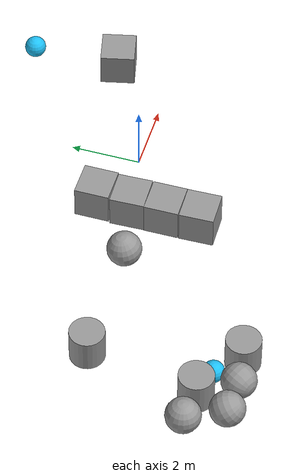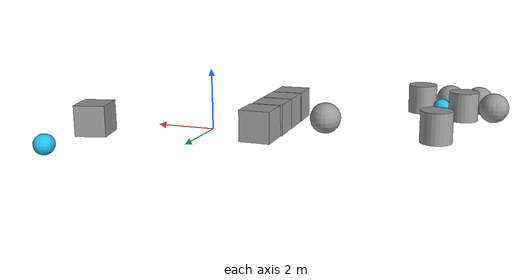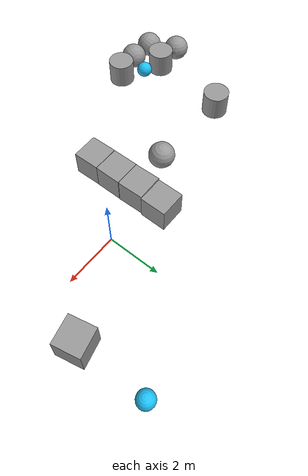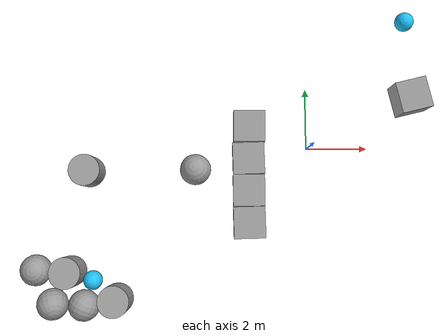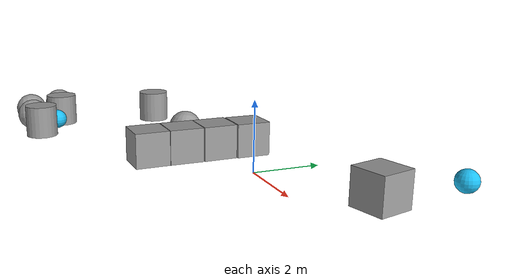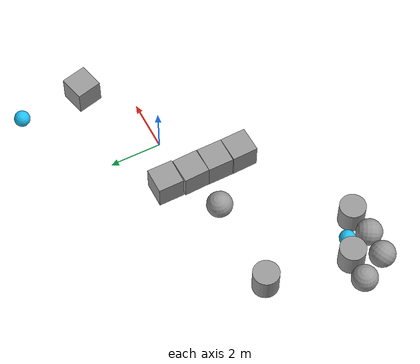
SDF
<sdf version="1.7">
 <world name="default">
  <gravity>0 0 -9.8</gravity>
  <magnetic_field>6e-06 2.3e-05 -4.2e-05</magnetic_field>
  <atmosphere type="adiabatic"/>
  <physics name="default_physics" default="0" type="ode">
   <max_step_size>0.001</max_step_size>
   <real_time_factor>1</real_time_factor>
   <real_time_update_rate>1000</real_time_update_rate>
  </physics>
  <scene>
   <ambient>0.4 0.4 0.4 1</ambient>
   <background>0.7 0.7 0.7 1</background>
   <shadows>0</shadows>
   <grid>0</grid>
   <origin_visual>0</origin_visual>
  </scene>
  <spherical_coordinates>
   <surface_model>EARTH_WGS84</surface_model>
   <latitude_deg>0</latitude_deg>
   <longitude_deg>0</longitude_deg>
   <elevation>0</elevation>
   <heading_deg>0</heading_deg>
  </spherical_coordinates>
  <model name="Ball_01_001">
   <static>1</static>
   <frame name="aws_robomaker_residential_Ball_01::__model__" attached_to="aws_robomaker_residential_Ball_01::link">
    <pose relative_to="__model__">0 0 0 0 -0 0</pose>
   </frame>
   <link name="aws_robomaker_residential_Ball_01::link">
    <inertial>
     <mass>0.12</mass>
     <inertia>
      <ixx>0.030752</ixx>
      <ixy>0</ixy>
      <ixz>0</ixz>
      <iyy>0.030752</iyy>
      <iyz>0</iyz>
      <izz>0.030752</izz>
     </inertia>
    </inertial>
    <collision name="collision">
     <geometry><sphere><radius>0.31</radius></sphere></geometry>
     <surface>
      <friction><ode><mu>0.85</mu><mu2>0.85</mu2></ode></friction>
      <contact><ode><kd>8500</kd><max_vel>5.1</max_vel></ode></contact>
     </surface>
    </collision>
    <visual name="visual">
     <geometry><sphere><radius>0.31</radius></sphere></geometry>
     <material><diffuse>0.12 0.76 0.97 1</diffuse><ambient>0.03 0.21 0.27 1</ambient></material>
     <meta><layer>1</layer></meta>
    </visual>
    <pose relative_to="aws_robomaker_residential_Ball_01::__model__">0 0 0 0 -0 0</pose>
   </link>
   <pose>3.2955 4.22567 0.318684 0 -0 0</pose>
  </model>
  <model name="Ball_01_003">
   <static>1</static>
   <frame name="aws_robomaker_residential_Ball_01::__model__" attached_to="aws_robomaker_residential_Ball_01::link">
    <pose relative_to="__model__">0 0 0 0 -0 0</pose>
   </frame>
   <link name="aws_robomaker_residential_Ball_01::link">
    <inertial>
     <mass>0.12</mass>
     <inertia>
      <ixx>0.030752</ixx>
      <ixy>0</ixy>
      <ixz>0</ixz>
      <iyy>0.030752</iyy>
      <iyz>0</iyz>
      <izz>0.030752</izz>
     </inertia>
    </inertial>
    <collision name="collision">
     <geometry><sphere><radius>0.31</radius></sphere></geometry>
     <surface>
      <friction><ode><mu>0.85</mu><mu2>0.85</mu2></ode></friction>
      <contact><ode><kd>8500</kd><max_vel>5.1</max_vel></ode></contact>
     </surface>
    </collision>
    <visual name="visual">
     <geometry><sphere><radius>0.31</radius></sphere></geometry>
     <material><diffuse>0.12 0.76 0.97 1</diffuse><ambient>0.03 0.21 0.27 1</ambient></material>
     <meta><layer>1</layer></meta>
    </visual>
    <pose relative_to="aws_robomaker_residential_Ball_01::__model__">0 0 0 0 -0 0</pose>
   </link>
   <pose>-6.9455 -4.22174 0.318684 0 -0 0</pose>
  </model>
  <light name="LivingRoom_CeilingLight_1" type="point">
   <pose>1.1943 -1.58996 2.2 0 -0 0</pose>
   <diffuse>0.5 0.5 0.5 1</diffuse>
   <specular>0.1 0.1 0.1 1</specular>
   <attenuation>
    <range>20</range>
    <constant>0.05</constant>
    <linear>0.01</linear>
    <quadratic>0.09</quadratic>
   </attenuation>
   <cast_shadows>0</cast_shadows>
   <direction>0 0 -1</direction>
   <spot><inner_angle>0</inner_angle><outer_angle>0</outer_angle><falloff>0</falloff></spot>
  </light>
  <light name="LivingRoom_WallLight_0" type="point">
   <pose>1.76956 -5.44437 2.2 0 -0 0</pose>
   <diffuse>0.24 0.24 0.24 1</diffuse>
   <specular>0.1 0.1 0.1 1</specular>
   <attenuation>
    <range>20</range>
    <constant>0.12</constant>
    <linear>0</linear>
    <quadratic>0.03</quadratic>
   </attenuation>
   <direction>0 0 -1</direction>
   <spot><inner_angle>0</inner_angle><outer_angle>0</outer_angle><falloff>0</falloff></spot>
  </light>
  <light name="LivingRoom_WallLight_1" type="point">
   <pose>-0.13826 -5.44437 2.2 0 -0 0</pose>
   <diffuse>0.24 0.24 0.24 1</diffuse>
   <specular>0.1 0.1 0.1 1</specular>
   <attenuation>
    <range>20</range>
    <constant>0.12</constant>
    <linear>0</linear>
    <quadratic>0.03</quadratic>
   </attenuation>
   <direction>0 0 -1</direction>
   <spot><inner_angle>0</inner_angle><outer_angle>0</outer_angle><falloff>0</falloff></spot>
  </light>
  <light name="TV_Light_0" type="point">
   <pose>0.8269 -4.93958 1.1 0 -0 0</pose>
   <diffuse>0.31372 0.31372 0.34901 1</diffuse>
   <specular>0.1 0.1 0.1 1</specular>
   <attenuation>
    <range>3</range>
    <constant>0.1</constant>
    <linear>0.04</linear>
    <quadratic>0.5</quadratic>
   </attenuation>
   <direction>0 0 -1</direction>
   <spot><inner_angle>0</inner_angle><outer_angle>0</outer_angle><falloff>0</falloff></spot>
  </light>
  <light name="Kitchen_CeilingLight_0" type="point">
   <pose>7.8582 -1.5905 2.28 0 -0 0</pose>
   <diffuse>0.5 0.5 0.5 1</diffuse>
   <specular>0.1 0.1 0.1 1</specular>
   <attenuation>
    <range>20</range>
    <constant>0.3</constant>
    <linear>0.01</linear>
    <quadratic>0.01</quadratic>
   </attenuation>
   <cast_shadows>0</cast_shadows>
   <direction>0 0 -1</direction>
   <spot><inner_angle>0</inner_angle><outer_angle>0</outer_angle><falloff>0</falloff></spot>
  </light>
  <model name="unit_box">
   <pose>3.36456 1.64919 0.5 1.5708 -0 0.233105</pose>
   <link name="link">
    <inertial>
     <mass>1</mass>
     <inertia>
      <ixx>0.166667</ixx>
      <ixy>0</ixy>
      <ixz>0</ixz>
      <iyy>0.166667</iyy>
      <iyz>0</iyz>
      <izz>0.166667</izz>
     </inertia>
    </inertial>
    <collision name="collision"><geometry><box><size>1 1 1</size></box></geometry></collision>
    <visual name="visual">
     <geometry><box><size>1 1 1</size></box></geometry>
     <material>
      <script><name>Gazebo/Grey</name><uri>file://media/materials/scripts/gazebo.material</uri></script>
     </material>
    </visual>
   </link>
  </model>
  <model name="unit_sphere">
   <pose>-3.64585 -0.690736 0.5 0.014414 0.161221 1.8426</pose>
   <link name="link">
    <inertial>
     <mass>1</mass>
     <inertia><ixx>0.1</ixx><ixy>0</ixy><ixz>0</ixz><iyy>0.1</iyy><iyz>0</iyz><izz>0.1</izz></inertia>
    </inertial>
    <collision name="collision"><geometry><sphere><radius>0.5</radius></sphere></geometry></collision>
    <visual name="visual">
     <geometry><sphere><radius>0.5</radius></sphere></geometry>
     <material>
      <script><name>Gazebo/Grey</name><uri>file://media/materials/scripts/gazebo.material</uri></script>
     </material>
    </visual>
   </link>
  </model>
  <model name="unit_cylinder">
   <pose>-6.18389 -4.83626 0.5 0 -0 -0.002416</pose>
   <link name="link">
    <inertial>
     <mass>1</mass>
     <inertia><ixx>0.145833</ixx><ixy>0</ixy><ixz>0</ixz><iyy>0.145833</iyy><iyz>0</iyz><izz>0.125</izz></inertia>
    </inertial>
    <collision name="collision">
     <geometry><cylinder><radius>0.5</radius><length>1</length></cylinder></geometry>
    </collision>
    <visual name="visual">
     <geometry><cylinder><radius>0.5</radius><length>1</length></cylinder></geometry>
     <material>
      <script><name>Gazebo/Grey</name><uri>file://media/materials/scripts/gazebo.material</uri></script>
     </material>
    </visual>
   </link>
  </model>
  <model name="unit_box_0">
   <pose>-1.92325 -2.39837 0.5 0 -0 0.025214</pose>
   <link name="link">
    <inertial>
     <mass>1</mass>
     <inertia>
      <ixx>0.166667</ixx>
      <ixy>0</ixy>
      <ixz>0</ixz>
      <iyy>0.166667</iyy>
      <iyz>0</iyz>
      <izz>0.166667</izz>
     </inertia>
    </inertial>
    <collision name="collision"><geometry><box><size>1 1 1</size></box></geometry></collision>
    <visual name="visual">
     <geometry><box><size>1 1 1</size></box></geometry>
     <material>
      <script><name>Gazebo/Grey</name><uri>file://media/materials/scripts/gazebo.material</uri></script>
     </material>
    </visual>
   </link>
  </model>
  <model name="unit_box_1">
   <pose>-1.93447 -1.38172 0.5 0 -0 0.005166</pose>
   <link name="link">
    <inertial>
     <mass>1</mass>
     <inertia>
      <ixx>0.166667</ixx>
      <ixy>0</ixy>
      <ixz>0</ixz>
      <iyy>0.166667</iyy>
      <iyz>0</iyz>
      <izz>0.166667</izz>
     </inertia>
    </inertial>
    <collision name="collision"><geometry><box><size>1 1 1</size></box></geometry></collision>
    <visual name="visual">
     <geometry><box><size>1 1 1</size></box></geometry>
     <material>
      <script><name>Gazebo/Grey</name><uri>file://media/materials/scripts/gazebo.material</uri></script>
     </material>
    </visual>
   </link>
  </model>
  <model name="unit_box_2">
   <pose>-1.94256 -0.368154 0.5 0 -0 0.029197</pose>
   <link name="link">
    <inertial>
     <mass>1</mass>
     <inertia>
      <ixx>0.166667</ixx>
      <ixy>0</ixy>
      <ixz>0</ixz>
      <iyy>0.166667</iyy>
      <iyz>0</iyz>
      <izz>0.166667</izz>
     </inertia>
    </inertial>
    <collision name="collision"><geometry><box><size>1 1 1</size></box></geometry></collision>
    <visual name="visual">
     <geometry><box><size>1 1 1</size></box></geometry>
     <material>
      <script><name>Gazebo/Grey</name><uri>file://media/materials/scripts/gazebo.material</uri></script>
     </material>
    </visual>
   </link>
  </model>
  <model name="unit_box_3">
   <pose>-1.9133 0.664688 0.5 -0 -0 -0</pose>
   <link name="link">
    <inertial>
     <mass>1</mass>
     <inertia>
      <ixx>0.166667</ixx>
      <ixy>0</ixy>
      <ixz>0</ixz>
      <iyy>0.166667</iyy>
      <iyz>0</iyz>
      <izz>0.166667</izz>
     </inertia>
    </inertial>
    <collision name="collision"><geometry><box><size>1 1 1</size></box></geometry></collision>
    <visual name="visual">
     <geometry><box><size>1 1 1</size></box></geometry>
     <material>
      <script><name>Gazebo/Grey</name><uri>file://media/materials/scripts/gazebo.material</uri></script>
     </material>
    </visual>
   </link>
  </model>
  <model name="unit_cylinder_0">
   <pose>-7.15035 -0.716255 0.49999 0 0 -0.440989</pose>
   <link name="link">
    <inertial>
     <mass>1</mass>
     <inertia><ixx>0.145833</ixx><ixy>0</ixy><ixz>0</ixz><iyy>0.145833</iyy><iyz>0</iyz><izz>0.125</izz></inertia>
    </inertial>
    <collision name="collision">
     <geometry><cylinder><radius>0.5</radius><length>1</length></cylinder></geometry>
    </collision>
    <visual name="visual">
     <geometry><cylinder><radius>0.5</radius><length>1</length></cylinder></geometry>
     <material>
      <script><name>Gazebo/Grey</name><uri>file://media/materials/scripts/gazebo.material</uri></script>
     </material>
    </visual>
   </link>
  </model>
  <model name="unit_sphere_0">
   <pose>-8.1752 -4.95298 0.5 0.82531 0.558661 -0.106157</pose>
   <link name="link">
    <inertial>
     <mass>1</mass>
     <inertia><ixx>0.1</ixx><ixy>0</ixy><ixz>0</ixz><iyy>0.1</iyy><iyz>0</iyz><izz>0.1</izz></inertia>
    </inertial>
    <collision name="collision"><geometry><sphere><radius>0.5</radius></sphere></geometry></collision>
    <visual name="visual">
     <geometry><sphere><radius>0.5</radius></sphere></geometry>
     <material>
      <script><name>Gazebo/Grey</name><uri>file://media/materials/scripts/gazebo.material</uri></script>
     </material>
    </visual>
   </link>
  </model>
  <model name="unit_sphere_1">
   <pose>-7.17579 -4.99214 0.5 1.70415 0.331952 -0.42711</pose>
   <link name="link">
    <inertial>
     <mass>1</mass>
     <inertia><ixx>0.1</ixx><ixy>0</ixy><ixz>0</ixz><iyy>0.1</iyy><iyz>0</iyz><izz>0.1</izz></inertia>
    </inertial>
    <collision name="collision"><geometry><sphere><radius>0.5</radius></sphere></geometry></collision>
    <visual name="visual">
     <geometry><sphere><radius>0.5</radius></sphere></geometry>
     <material>
      <script><name>Gazebo/Grey</name><uri>file://media/materials/scripts/gazebo.material</uri></script>
     </material>
    </visual>
   </link>
  </model>
  <model name="unit_cylinder_1">
   <pose>-7.70923 -3.95188 0.5 0 -0 -0.042889</pose>
   <link name="link">
    <inertial>
     <mass>1</mass>
     <inertia><ixx>0.145833</ixx><ixy>0</ixy><ixz>0</ixz><iyy>0.145833</iyy><iyz>0</iyz><izz>0.125</izz></inertia>
    </inertial>
    <collision name="collision">
     <geometry><cylinder><radius>0.5</radius><length>1</length></cylinder></geometry>
    </collision>
    <visual name="visual">
     <geometry><cylinder><radius>0.5</radius><length>1</length></cylinder></geometry>
     <material>
      <script><name>Gazebo/Grey</name><uri>file://media/materials/scripts/gazebo.material</uri></script>
     </material>
    </visual>
   </link>
  </model>
  <model name="unit_sphere_2">
   <pose>-8.72591 -3.88558 0.5 0 -0 0</pose>
   <link name="link">
    <inertial>
     <mass>1</mass>
     <inertia><ixx>0.1</ixx><ixy>0</ixy><ixz>0</ixz><iyy>0.1</iyy><iyz>0</iyz><izz>0.1</izz></inertia>
    </inertial>
    <collision name="collision"><geometry><sphere><radius>0.5</radius></sphere></geometry></collision>
    <visual name="visual">
     <geometry><sphere><radius>0.5</radius></sphere></geometry>
     <material>
      <script><name>Gazebo/Grey</name><uri>file://media/materials/scripts/gazebo.material</uri></script>
     </material>
    </visual>
   </link>
  </model>
 </world>
</sdf>
